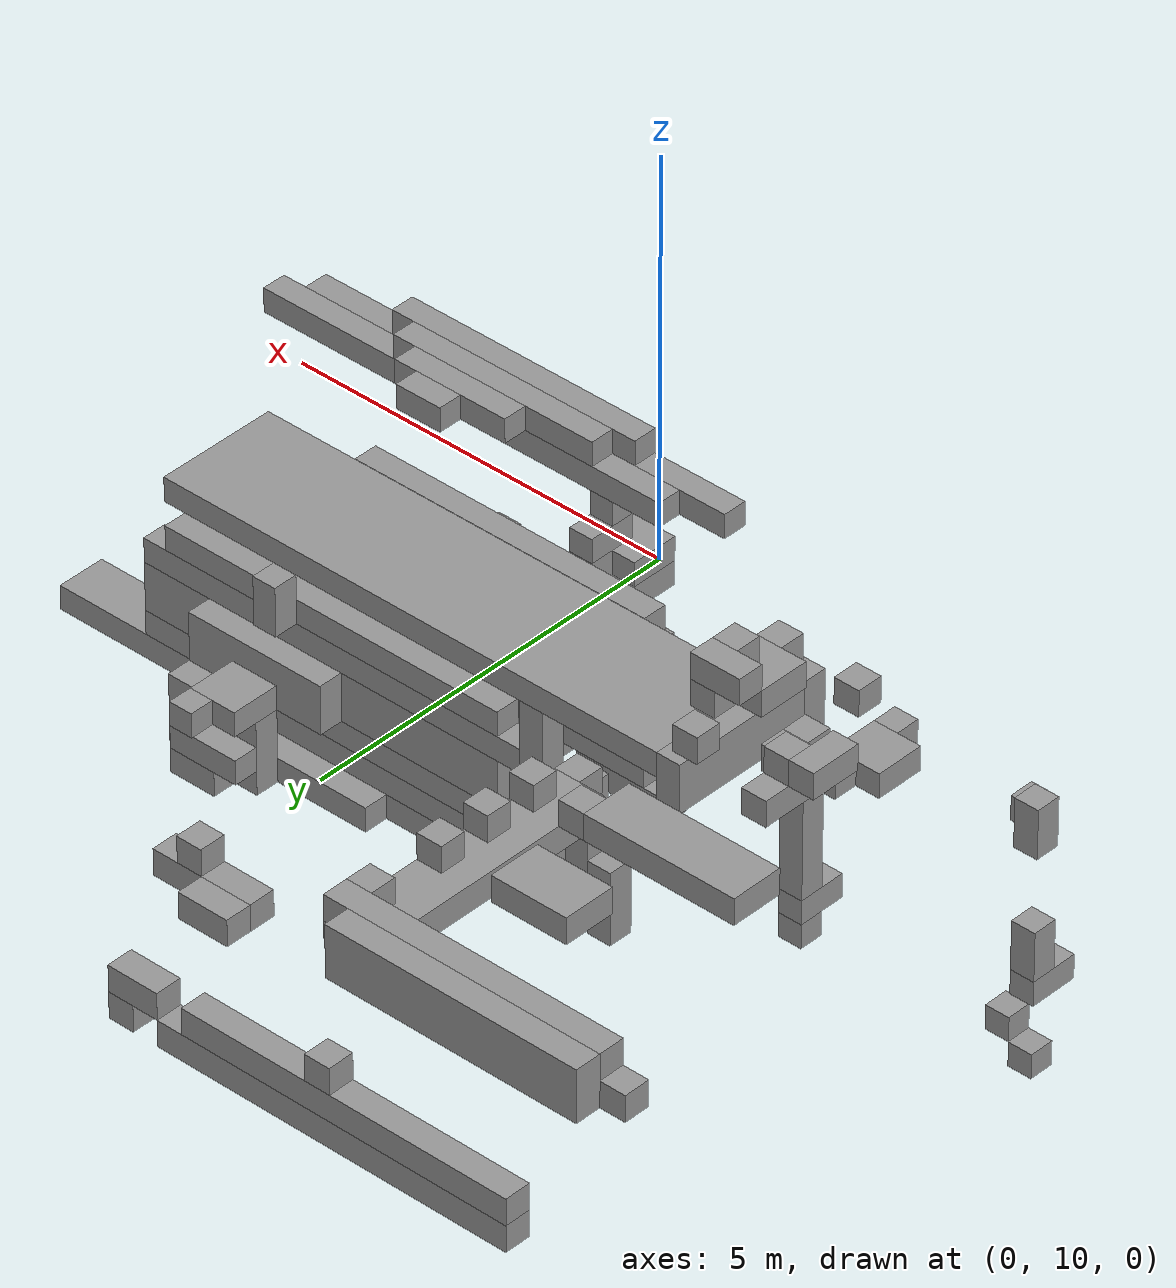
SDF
<sdf version="1.6">
 <world name="bt_world">
  <include><uri>model://sun</uri></include>
  <model name="obstacle_1605">
   <static>true</static>
   <pose>-10.5 23.849999999999998 7.949999999999999 0 0 0</pose>
   <link name="link">
    <collision name="collision">
     <geometry><box><size>3.5999999999999996 0.3 0.3</size></box></geometry>
    </collision>
    <visual name="visual">
     <geometry><box><size>3.5999999999999996 0.3 0.3</size></box></geometry>
     <material><ambient>0.5 0.5 0.5 1</ambient><diffuse>0.6 0.6 0.6 1</diffuse></material>
    </visual>
   </link>
  </model>
  <model name="obstacle_1623">
   <static>true</static>
   <pose>-10.35 23.849999999999998 8.25 0 0 0</pose>
   <link name="link">
    <collision name="collision"><geometry><box><size>3.3 0.3 0.3</size></box></geometry></collision>
    <visual name="visual">
     <geometry><box><size>3.3 0.3 0.3</size></box></geometry>
     <material><ambient>0.5 0.5 0.5 1</ambient><diffuse>0.6 0.6 0.6 1</diffuse></material>
    </visual>
   </link>
  </model>
  <model name="obstacle_1624">
   <static>true</static>
   <pose>-10.5 24.15 8.1 0 0 0</pose>
   <link name="link">
    <collision name="collision"><geometry><box><size>3.0 0.3 0.6</size></box></geometry></collision>
    <visual name="visual">
     <geometry><box><size>3.0 0.3 0.6</size></box></geometry>
     <material><ambient>0.5 0.5 0.5 1</ambient><diffuse>0.6 0.6 0.6 1</diffuse></material>
    </visual>
   </link>
  </model>
  <model name="obstacle_1625">
   <static>true</static>
   <pose>-9.9 25.05 7.05 0 0 0</pose>
   <link name="link">
    <collision name="collision"><geometry><box><size>4.2 0.3 0.3</size></box></geometry></collision>
    <visual name="visual">
     <geometry><box><size>4.2 0.3 0.3</size></box></geometry>
     <material><ambient>0.5 0.5 0.5 1</ambient><diffuse>0.6 0.6 0.6 1</diffuse></material>
    </visual>
   </link>
  </model>
  <model name="obstacle_1626">
   <static>true</static>
   <pose>-10.049999999999999 25.05 7.35 0 0 0</pose>
   <link name="link">
    <collision name="collision"><geometry><box><size>3.9 0.3 0.3</size></box></geometry></collision>
    <visual name="visual">
     <geometry><box><size>3.9 0.3 0.3</size></box></geometry>
     <material><ambient>0.5 0.5 0.5 1</ambient><diffuse>0.6 0.6 0.6 1</diffuse></material>
    </visual>
   </link>
  </model>
  <model name="obstacle_1655">
   <static>true</static>
   <pose>-10.5 21.3 8.25 0 0 0</pose>
   <link name="link">
    <collision name="collision">
     <geometry><box><size>1.7999999999999998 0.6 0.3</size></box></geometry>
    </collision>
    <visual name="visual">
     <geometry><box><size>1.7999999999999998 0.6 0.3</size></box></geometry>
     <material><ambient>0.5 0.5 0.5 1</ambient><diffuse>0.6 0.6 0.6 1</diffuse></material>
    </visual>
   </link>
  </model>
  <model name="obstacle_1680">
   <static>true</static>
   <pose>-10.049999999999999 22.5 8.25 0 0 0</pose>
   <link name="link">
    <collision name="collision">
     <geometry><box><size>0.8999999999999999 0.6 0.3</size></box></geometry>
    </collision>
    <visual name="visual">
     <geometry><box><size>0.8999999999999999 0.6 0.3</size></box></geometry>
     <material><ambient>0.5 0.5 0.5 1</ambient><diffuse>0.6 0.6 0.6 1</diffuse></material>
    </visual>
   </link>
  </model>
  <model name="obstacle_1684">
   <static>true</static>
   <pose>-10.049999999999999 18.45 8.25 0 0 0</pose>
   <link name="link">
    <collision name="collision"><geometry><box><size>0.3 0.3 0.3</size></box></geometry></collision>
    <visual name="visual">
     <geometry><box><size>0.3 0.3 0.3</size></box></geometry>
     <material><ambient>0.5 0.5 0.5 1</ambient><diffuse>0.6 0.6 0.6 1</diffuse></material>
    </visual>
   </link>
  </model>
  <model name="obstacle_1685">
   <static>true</static>
   <pose>-10.049999999999999 18.9 7.6499999999999995 0 0 0</pose>
   <link name="link">
    <collision name="collision"><geometry><box><size>0.3 0.6 0.3</size></box></geometry></collision>
    <visual name="visual">
     <geometry><box><size>0.3 0.6 0.3</size></box></geometry>
     <material><ambient>0.5 0.5 0.5 1</ambient><diffuse>0.6 0.6 0.6 1</diffuse></material>
    </visual>
   </link>
  </model>
  <model name="obstacle_1697">
   <static>true</static>
   <pose>-9.6 18.75 7.35 0 0 0</pose>
   <link name="link">
    <collision name="collision"><geometry><box><size>0.6 0.3 0.3</size></box></geometry></collision>
    <visual name="visual">
     <geometry><box><size>0.6 0.3 0.3</size></box></geometry>
     <material><ambient>0.5 0.5 0.5 1</ambient><diffuse>0.6 0.6 0.6 1</diffuse></material>
    </visual>
   </link>
  </model>
  <model name="obstacle_1698">
   <static>true</static>
   <pose>-9.75 19.2 7.35 0 0 0</pose>
   <link name="link">
    <collision name="collision"><geometry><box><size>0.3 0.6 0.3</size></box></geometry></collision>
    <visual name="visual">
     <geometry><box><size>0.3 0.6 0.3</size></box></geometry>
     <material><ambient>0.5 0.5 0.5 1</ambient><diffuse>0.6 0.6 0.6 1</diffuse></material>
    </visual>
   </link>
  </model>
  <model name="obstacle_1699">
   <static>true</static>
   <pose>-9.75 19.05 7.6499999999999995 0 0 0</pose>
   <link name="link">
    <collision name="collision"><geometry><box><size>0.3 0.3 0.3</size></box></geometry></collision>
    <visual name="visual">
     <geometry><box><size>0.3 0.3 0.3</size></box></geometry>
     <material><ambient>0.5 0.5 0.5 1</ambient><diffuse>0.6 0.6 0.6 1</diffuse></material>
    </visual>
   </link>
  </model>
  <model name="obstacle_1700">
   <static>true</static>
   <pose>-9.75 25.05 7.6499999999999995 0 0 0</pose>
   <link name="link">
    <collision name="collision"><geometry><box><size>0.3 0.3 0.3</size></box></geometry></collision>
    <visual name="visual">
     <geometry><box><size>0.3 0.3 0.3</size></box></geometry>
     <material><ambient>0.5 0.5 0.5 1</ambient><diffuse>0.6 0.6 0.6 1</diffuse></material>
    </visual>
   </link>
  </model>
  <model name="obstacle_1710">
   <static>true</static>
   <pose>-9.45 18.45 7.35 0 0 0</pose>
   <link name="link">
    <collision name="collision"><geometry><box><size>0.3 0.3 0.3</size></box></geometry></collision>
    <visual name="visual">
     <geometry><box><size>0.3 0.3 0.3</size></box></geometry>
     <material><ambient>0.5 0.5 0.5 1</ambient><diffuse>0.6 0.6 0.6 1</diffuse></material>
    </visual>
   </link>
  </model>
  <model name="obstacle_1711">
   <static>true</static>
   <pose>-9.45 19.95 8.25 0 0 0</pose>
   <link name="link">
    <collision name="collision"><geometry><box><size>0.3 0.3 0.3</size></box></geometry></collision>
    <visual name="visual">
     <geometry><box><size>0.3 0.3 0.3</size></box></geometry>
     <material><ambient>0.5 0.5 0.5 1</ambient><diffuse>0.6 0.6 0.6 1</diffuse></material>
    </visual>
   </link>
  </model>
  <model name="obstacle_1712">
   <static>true</static>
   <pose>-9.45 21.45 8.25 0 0 0</pose>
   <link name="link">
    <collision name="collision"><geometry><box><size>0.3 0.3 0.3</size></box></geometry></collision>
    <visual name="visual">
     <geometry><box><size>0.3 0.3 0.3</size></box></geometry>
     <material><ambient>0.5 0.5 0.5 1</ambient><diffuse>0.6 0.6 0.6 1</diffuse></material>
    </visual>
   </link>
  </model>
  <model name="obstacle_1716">
   <static>true</static>
   <pose>-9.0 18.599999999999998 7.949999999999999 0 0 0</pose>
   <link name="link">
    <collision name="collision"><geometry><box><size>0.6 0.6 0.3</size></box></geometry></collision>
    <visual name="visual">
     <geometry><box><size>0.6 0.6 0.3</size></box></geometry>
     <material><ambient>0.5 0.5 0.5 1</ambient><diffuse>0.6 0.6 0.6 1</diffuse></material>
    </visual>
   </link>
  </model>
  <model name="obstacle_1717">
   <static>true</static>
   <pose>-9.0 19.05 8.25 0 0 0</pose>
   <link name="link">
    <collision name="collision"><geometry><box><size>0.6 0.3 0.3</size></box></geometry></collision>
    <visual name="visual">
     <geometry><box><size>0.6 0.3 0.3</size></box></geometry>
     <material><ambient>0.5 0.5 0.5 1</ambient><diffuse>0.6 0.6 0.6 1</diffuse></material>
    </visual>
   </link>
  </model>
  <model name="obstacle_1718">
   <static>true</static>
   <pose>-9.0 22.349999999999998 7.949999999999999 0 0 0</pose>
   <link name="link">
    <collision name="collision">
     <geometry><box><size>0.6 2.6999999999999997 0.3</size></box></geometry>
    </collision>
    <visual name="visual">
     <geometry><box><size>0.6 2.6999999999999997 0.3</size></box></geometry>
     <material><ambient>0.5 0.5 0.5 1</ambient><diffuse>0.6 0.6 0.6 1</diffuse></material>
    </visual>
   </link>
  </model>
  <model name="obstacle_1721">
   <static>true</static>
   <pose>-8.85 18.3 7.6499999999999995 0 0 0</pose>
   <link name="link">
    <collision name="collision"><geometry><box><size>0.3 0.6 0.3</size></box></geometry></collision>
    <visual name="visual">
     <geometry><box><size>0.3 0.6 0.3</size></box></geometry>
     <material><ambient>0.5 0.5 0.5 1</ambient><diffuse>0.6 0.6 0.6 1</diffuse></material>
    </visual>
   </link>
  </model>
  <model name="obstacle_1722">
   <static>true</static>
   <pose>-8.85 18.15 7.949999999999999 0 0 0</pose>
   <link name="link">
    <collision name="collision"><geometry><box><size>0.3 0.3 0.3</size></box></geometry></collision>
    <visual name="visual">
     <geometry><box><size>0.3 0.3 0.3</size></box></geometry>
     <material><ambient>0.5 0.5 0.5 1</ambient><diffuse>0.6 0.6 0.6 1</diffuse></material>
    </visual>
   </link>
  </model>
  <model name="obstacle_1723">
   <static>true</static>
   <pose>-8.85 18.75 8.25 0 0 0</pose>
   <link name="link">
    <collision name="collision"><geometry><box><size>0.3 0.3 0.3</size></box></geometry></collision>
    <visual name="visual">
     <geometry><box><size>0.3 0.3 0.3</size></box></geometry>
     <material><ambient>0.5 0.5 0.5 1</ambient><diffuse>0.6 0.6 0.6 1</diffuse></material>
    </visual>
   </link>
  </model>
  <model name="obstacle_1724">
   <static>true</static>
   <pose>-8.85 19.05 7.949999999999999 0 0 0</pose>
   <link name="link">
    <collision name="collision"><geometry><box><size>0.3 0.3 0.3</size></box></geometry></collision>
    <visual name="visual">
     <geometry><box><size>0.3 0.3 0.3</size></box></geometry>
     <material><ambient>0.5 0.5 0.5 1</ambient><diffuse>0.6 0.6 0.6 1</diffuse></material>
    </visual>
   </link>
  </model>
  <model name="obstacle_1725">
   <static>true</static>
   <pose>-8.85 20.849999999999998 7.949999999999999 0 0 0</pose>
   <link name="link">
    <collision name="collision"><geometry><box><size>0.3 0.3 0.3</size></box></geometry></collision>
    <visual name="visual">
     <geometry><box><size>0.3 0.3 0.3</size></box></geometry>
     <material><ambient>0.5 0.5 0.5 1</ambient><diffuse>0.6 0.6 0.6 1</diffuse></material>
    </visual>
   </link>
  </model>
  <model name="obstacle_1726">
   <static>true</static>
   <pose>-8.85 22.349999999999998 7.6499999999999995 0 0 0</pose>
   <link name="link">
    <collision name="collision">
     <geometry><box><size>0.3 2.6999999999999997 0.3</size></box></geometry>
    </collision>
    <visual name="visual">
     <geometry><box><size>0.3 2.6999999999999997 0.3</size></box></geometry>
     <material><ambient>0.5 0.5 0.5 1</ambient><diffuse>0.6 0.6 0.6 1</diffuse></material>
    </visual>
   </link>
  </model>
  <model name="obstacle_1727">
   <static>true</static>
   <pose>-8.85 21.45 8.25 0 0 0</pose>
   <link name="link">
    <collision name="collision"><geometry><box><size>0.3 0.3 0.3</size></box></geometry></collision>
    <visual name="visual">
     <geometry><box><size>0.3 0.3 0.3</size></box></geometry>
     <material><ambient>0.5 0.5 0.5 1</ambient><diffuse>0.6 0.6 0.6 1</diffuse></material>
    </visual>
   </link>
  </model>
  <model name="obstacle_1728">
   <static>true</static>
   <pose>-8.85 22.05 8.25 0 0 0</pose>
   <link name="link">
    <collision name="collision"><geometry><box><size>0.3 0.3 0.3</size></box></geometry></collision>
    <visual name="visual">
     <geometry><box><size>0.3 0.3 0.3</size></box></geometry>
     <material><ambient>0.5 0.5 0.5 1</ambient><diffuse>0.6 0.6 0.6 1</diffuse></material>
    </visual>
   </link>
  </model>
  <model name="obstacle_1729">
   <static>true</static>
   <pose>-8.85 22.65 8.25 0 0 0</pose>
   <link name="link">
    <collision name="collision"><geometry><box><size>0.3 0.3 0.3</size></box></geometry></collision>
    <visual name="visual">
     <geometry><box><size>0.3 0.3 0.3</size></box></geometry>
     <material><ambient>0.5 0.5 0.5 1</ambient><diffuse>0.6 0.6 0.6 1</diffuse></material>
    </visual>
   </link>
  </model>
  <model name="obstacle_1730">
   <static>true</static>
   <pose>-8.85 23.55 8.25 0 0 0</pose>
   <link name="link">
    <collision name="collision"><geometry><box><size>0.3 0.3 0.3</size></box></geometry></collision>
    <visual name="visual">
     <geometry><box><size>0.3 0.3 0.3</size></box></geometry>
     <material><ambient>0.5 0.5 0.5 1</ambient><diffuse>0.6 0.6 0.6 1</diffuse></material>
    </visual>
   </link>
  </model>
  <model name="obstacle_1750">
   <static>true</static>
   <pose>-7.6499999999999995 12.9 0.44999999999999996 0 0 0</pose>
   <link name="link">
    <collision name="collision"><geometry><box><size>0.3 0.6 0.3</size></box></geometry></collision>
    <visual name="visual">
     <geometry><box><size>0.3 0.6 0.3</size></box></geometry>
     <material><ambient>0.5 0.5 0.5 1</ambient><diffuse>0.6 0.6 0.6 1</diffuse></material>
    </visual>
   </link>
  </model>
  <model name="obstacle_1751">
   <static>true</static>
   <pose>-7.6499999999999995 13.049999999999999 -0.44999999999999996 0 0 0</pose>
   <link name="link">
    <collision name="collision"><geometry><box><size>0.3 0.3 0.3</size></box></geometry></collision>
    <visual name="visual">
     <geometry><box><size>0.3 0.3 0.3</size></box></geometry>
     <material><ambient>0.5 0.5 0.5 1</ambient><diffuse>0.6 0.6 0.6 1</diffuse></material>
    </visual>
   </link>
  </model>
  <model name="obstacle_1752">
   <static>true</static>
   <pose>-7.6499999999999995 13.049999999999999 0.8999999999999999 0 0 0</pose>
   <link name="link">
    <collision name="collision"><geometry><box><size>0.3 0.3 0.6</size></box></geometry></collision>
    <visual name="visual">
     <geometry><box><size>0.3 0.3 0.6</size></box></geometry>
     <material><ambient>0.5 0.5 0.5 1</ambient><diffuse>0.6 0.6 0.6 1</diffuse></material>
    </visual>
   </link>
  </model>
  <model name="obstacle_1753">
   <static>true</static>
   <pose>-7.6499999999999995 13.049999999999999 2.4 0 0 0</pose>
   <link name="link">
    <collision name="collision"><geometry><box><size>0.3 0.3 0.6</size></box></geometry></collision>
    <visual name="visual">
     <geometry><box><size>0.3 0.3 0.6</size></box></geometry>
     <material><ambient>0.5 0.5 0.5 1</ambient><diffuse>0.6 0.6 0.6 1</diffuse></material>
    </visual>
   </link>
  </model>
  <model name="obstacle_1754">
   <static>true</static>
   <pose>-7.199999999999999 23.849999999999998 7.6499999999999995 0 0 0</pose>
   <link name="link">
    <collision name="collision"><geometry><box><size>1.2 0.3 0.3</size></box></geometry></collision>
    <visual name="visual">
     <geometry><box><size>1.2 0.3 0.3</size></box></geometry>
     <material><ambient>0.5 0.5 0.5 1</ambient><diffuse>0.6 0.6 0.6 1</diffuse></material>
    </visual>
   </link>
  </model>
  <model name="obstacle_1755">
   <static>true</static>
   <pose>-7.5 24.15 7.6499999999999995 0 0 0</pose>
   <link name="link">
    <collision name="collision"><geometry><box><size>0.6 0.3 0.3</size></box></geometry></collision>
    <visual name="visual">
     <geometry><box><size>0.6 0.3 0.3</size></box></geometry>
     <material><ambient>0.5 0.5 0.5 1</ambient><diffuse>0.6 0.6 0.6 1</diffuse></material>
    </visual>
   </link>
  </model>
  <model name="obstacle_1756">
   <static>true</static>
   <pose>-7.5 25.05 7.35 0 0 0</pose>
   <link name="link">
    <collision name="collision"><geometry><box><size>0.6 0.3 0.3</size></box></geometry></collision>
    <visual name="visual">
     <geometry><box><size>0.6 0.3 0.3</size></box></geometry>
     <material><ambient>0.5 0.5 0.5 1</ambient><diffuse>0.6 0.6 0.6 1</diffuse></material>
    </visual>
   </link>
  </model>
  <model name="obstacle_1759">
   <static>true</static>
   <pose>-7.35 12.75 2.25 0 0 0</pose>
   <link name="link">
    <collision name="collision"><geometry><box><size>0.3 0.3 0.3</size></box></geometry></collision>
    <visual name="visual">
     <geometry><box><size>0.3 0.3 0.3</size></box></geometry>
     <material><ambient>0.5 0.5 0.5 1</ambient><diffuse>0.6 0.6 0.6 1</diffuse></material>
    </visual>
   </link>
  </model>
  <model name="obstacle_1760">
   <static>true</static>
   <pose>-7.35 13.049999999999999 -0.15 0 0 0</pose>
   <link name="link">
    <collision name="collision"><geometry><box><size>0.3 0.3 0.3</size></box></geometry></collision>
    <visual name="visual">
     <geometry><box><size>0.3 0.3 0.3</size></box></geometry>
     <material><ambient>0.5 0.5 0.5 1</ambient><diffuse>0.6 0.6 0.6 1</diffuse></material>
    </visual>
   </link>
  </model>
  <model name="obstacle_1761">
   <static>true</static>
   <pose>-7.35 25.05 7.05 0 0 0</pose>
   <link name="link">
    <collision name="collision"><geometry><box><size>0.3 0.3 0.3</size></box></geometry></collision>
    <visual name="visual">
     <geometry><box><size>0.3 0.3 0.3</size></box></geometry>
     <material><ambient>0.5 0.5 0.5 1</ambient><diffuse>0.6 0.6 0.6 1</diffuse></material>
    </visual>
   </link>
  </model>
  <model name="obstacle_1765">
   <static>true</static>
   <pose>-7.05 23.849999999999998 7.949999999999999 0 0 0</pose>
   <link name="link">
    <collision name="collision"><geometry><box><size>0.3 0.3 0.3</size></box></geometry></collision>
    <visual name="visual">
     <geometry><box><size>0.3 0.3 0.3</size></box></geometry>
     <material><ambient>0.5 0.5 0.5 1</ambient><diffuse>0.6 0.6 0.6 1</diffuse></material>
    </visual>
   </link>
  </model>
  <model name="obstacle_1774">
   <static>true</static>
   <pose>-6.0 13.5 2.55 0 0 0</pose>
   <link name="link">
    <collision name="collision"><geometry><box><size>0.6 0.6 0.3</size></box></geometry></collision>
    <visual name="visual">
     <geometry><box><size>0.6 0.6 0.3</size></box></geometry>
     <material><ambient>0.5 0.5 0.5 1</ambient><diffuse>0.6 0.6 0.6 1</diffuse></material>
    </visual>
   </link>
  </model>
  <model name="obstacle_1777">
   <static>true</static>
   <pose>-5.85 13.049999999999999 2.55 0 0 0</pose>
   <link name="link">
    <collision name="collision"><geometry><box><size>0.3 0.3 0.3</size></box></geometry></collision>
    <visual name="visual">
     <geometry><box><size>0.3 0.3 0.3</size></box></geometry>
     <material><ambient>0.5 0.5 0.5 1</ambient><diffuse>0.6 0.6 0.6 1</diffuse></material>
    </visual>
   </link>
  </model>
  <model name="obstacle_1778">
   <static>true</static>
   <pose>-5.85 13.95 2.55 0 0 0</pose>
   <link name="link">
    <collision name="collision"><geometry><box><size>0.3 0.3 0.3</size></box></geometry></collision>
    <visual name="visual">
     <geometry><box><size>0.3 0.3 0.3</size></box></geometry>
     <material><ambient>0.5 0.5 0.5 1</ambient><diffuse>0.6 0.6 0.6 1</diffuse></material>
    </visual>
   </link>
  </model>
  <model name="obstacle_1794">
   <static>true</static>
   <pose>-4.6499999999999995 12.9 -0.15 0 0 0</pose>
   <link name="link">
    <collision name="collision"><geometry><box><size>0.3 0.6 0.3</size></box></geometry></collision>
    <visual name="visual">
     <geometry><box><size>0.3 0.6 0.3</size></box></geometry>
     <material><ambient>0.5 0.5 0.5 1</ambient><diffuse>0.6 0.6 0.6 1</diffuse></material>
    </visual>
   </link>
  </model>
  <model name="obstacle_1795">
   <static>true</static>
   <pose>-4.6499999999999995 13.049999999999999 -0.44999999999999996 0 0 0</pose>
   <link name="link">
    <collision name="collision"><geometry><box><size>0.3 0.3 0.3</size></box></geometry></collision>
    <visual name="visual">
     <geometry><box><size>0.3 0.3 0.3</size></box></geometry>
     <material><ambient>0.5 0.5 0.5 1</ambient><diffuse>0.6 0.6 0.6 1</diffuse></material>
    </visual>
   </link>
  </model>
  <model name="obstacle_1796">
   <static>true</static>
   <pose>-4.6499999999999995 13.049999999999999 1.3499999999999999 0 0 0</pose>
   <link name="link">
    <collision name="collision">
     <geometry><box><size>0.3 0.3 2.6999999999999997</size></box></geometry>
    </collision>
    <visual name="visual">
     <geometry><box><size>0.3 0.3 2.6999999999999997</size></box></geometry>
     <material><ambient>0.5 0.5 0.5 1</ambient><diffuse>0.6 0.6 0.6 1</diffuse></material>
    </visual>
   </link>
  </model>
  <model name="obstacle_1797">
   <static>true</static>
   <pose>-4.6499999999999995 14.1 2.4 0 0 0</pose>
   <link name="link">
    <collision name="collision">
     <geometry><box><size>0.3 1.7999999999999998 0.6</size></box></geometry>
    </collision>
    <visual name="visual">
     <geometry><box><size>0.3 1.7999999999999998 0.6</size></box></geometry>
     <material><ambient>0.5 0.5 0.5 1</ambient><diffuse>0.6 0.6 0.6 1</diffuse></material>
    </visual>
   </link>
  </model>
  <model name="obstacle_1806">
   <static>true</static>
   <pose>-1.2 14.25 2.55 0 0 0</pose>
   <link name="link">
    <collision name="collision"><geometry><box><size>6.6 1.5 0.3</size></box></geometry></collision>
    <visual name="visual">
     <geometry><box><size>6.6 1.5 0.3</size></box></geometry>
     <material><ambient>0.5 0.5 0.5 1</ambient><diffuse>0.6 0.6 0.6 1</diffuse></material>
    </visual>
   </link>
  </model>
  <model name="obstacle_1833">
   <static>true</static>
   <pose>-3.75 14.85 0.44999999999999996 0 0 0</pose>
   <link name="link">
    <collision name="collision">
     <geometry><box><size>0.3 0.3 0.8999999999999999</size></box></geometry>
    </collision>
    <visual name="visual">
     <geometry><box><size>0.3 0.3 0.8999999999999999</size></box></geometry>
     <material><ambient>0.5 0.5 0.5 1</ambient><diffuse>0.6 0.6 0.6 1</diffuse></material>
    </visual>
   </link>
  </model>
  <model name="obstacle_1846">
   <static>true</static>
   <pose>-3.4499999999999997 14.85 1.2 0 0 0</pose>
   <link name="link">
    <collision name="collision"><geometry><box><size>0.3 0.3 1.2</size></box></geometry></collision>
    <visual name="visual">
     <geometry><box><size>0.3 0.3 1.2</size></box></geometry>
     <material><ambient>0.5 0.5 0.5 1</ambient><diffuse>0.6 0.6 0.6 1</diffuse></material>
    </visual>
   </link>
  </model>
  <model name="obstacle_1861">
   <static>true</static>
   <pose>-2.4 13.049999999999999 0.15 0 0 0</pose>
   <link name="link">
    <collision name="collision"><geometry><box><size>1.2 0.3 0.3</size></box></geometry></collision>
    <visual name="visual">
     <geometry><box><size>1.2 0.3 0.3</size></box></geometry>
     <material><ambient>0.5 0.5 0.5 1</ambient><diffuse>0.6 0.6 0.6 1</diffuse></material>
    </visual>
   </link>
  </model>
  <model name="obstacle_1862">
   <static>true</static>
   <pose>-0.44999999999999996 13.049999999999999 1.05 0 0 0</pose>
   <link name="link">
    <collision name="collision"><geometry><box><size>5.1 0.3 0.3</size></box></geometry></collision>
    <visual name="visual">
     <geometry><box><size>5.1 0.3 0.3</size></box></geometry>
     <material><ambient>0.5 0.5 0.5 1</ambient><diffuse>0.6 0.6 0.6 1</diffuse></material>
    </visual>
   </link>
  </model>
  <model name="obstacle_1863">
   <static>true</static>
   <pose>-2.85 13.049999999999999 1.3499999999999999 0 0 0</pose>
   <link name="link">
    <collision name="collision"><geometry><box><size>0.3 0.3 0.3</size></box></geometry></collision>
    <visual name="visual">
     <geometry><box><size>0.3 0.3 0.3</size></box></geometry>
     <material><ambient>0.5 0.5 0.5 1</ambient><diffuse>0.6 0.6 0.6 1</diffuse></material>
    </visual>
   </link>
  </model>
  <model name="obstacle_1864">
   <static>true</static>
   <pose>0.3 14.7 0.44999999999999996 0 0 0</pose>
   <link name="link">
    <collision name="collision"><geometry><box><size>6.6 0.6 0.3</size></box></geometry></collision>
    <visual name="visual">
     <geometry><box><size>6.6 0.6 0.3</size></box></geometry>
     <material><ambient>0.5 0.5 0.5 1</ambient><diffuse>0.6 0.6 0.6 1</diffuse></material>
    </visual>
   </link>
  </model>
  <model name="obstacle_1865">
   <static>true</static>
   <pose>-2.85 14.85 0.15 0 0 0</pose>
   <link name="link">
    <collision name="collision"><geometry><box><size>0.3 0.3 0.3</size></box></geometry></collision>
    <visual name="visual">
     <geometry><box><size>0.3 0.3 0.3</size></box></geometry>
     <material><ambient>0.5 0.5 0.5 1</ambient><diffuse>0.6 0.6 0.6 1</diffuse></material>
    </visual>
   </link>
  </model>
  <model name="obstacle_1866">
   <static>true</static>
   <pose>-0.3 14.85 0.75 0 0 0</pose>
   <link name="link">
    <collision name="collision">
     <geometry><box><size>5.3999999999999995 0.3 0.3</size></box></geometry>
    </collision>
    <visual name="visual">
     <geometry><box><size>5.3999999999999995 0.3 0.3</size></box></geometry>
     <material><ambient>0.5 0.5 0.5 1</ambient><diffuse>0.6 0.6 0.6 1</diffuse></material>
    </visual>
   </link>
  </model>
  <model name="obstacle_1867">
   <static>true</static>
   <pose>-2.85 14.85 1.65 0 0 0</pose>
   <link name="link">
    <collision name="collision"><geometry><box><size>0.3 0.3 1.5</size></box></geometry></collision>
    <visual name="visual">
     <geometry><box><size>0.3 0.3 1.5</size></box></geometry>
     <material><ambient>0.5 0.5 0.5 1</ambient><diffuse>0.6 0.6 0.6 1</diffuse></material>
    </visual>
   </link>
  </model>
  <model name="obstacle_1871">
   <static>true</static>
   <pose>0.6 12.75 0.15 0 0 0</pose>
   <link name="link">
    <collision name="collision"><geometry><box><size>6.6 0.3 0.3</size></box></geometry></collision>
    <visual name="visual">
     <geometry><box><size>6.6 0.3 0.3</size></box></geometry>
     <material><ambient>0.5 0.5 0.5 1</ambient><diffuse>0.6 0.6 0.6 1</diffuse></material>
    </visual>
   </link>
  </model>
  <model name="obstacle_1872">
   <static>true</static>
   <pose>-0.15 13.049999999999999 0.6 0 0 0</pose>
   <link name="link">
    <collision name="collision"><geometry><box><size>5.1 0.3 0.6</size></box></geometry></collision>
    <visual name="visual">
     <geometry><box><size>5.1 0.3 0.6</size></box></geometry>
     <material><ambient>0.5 0.5 0.5 1</ambient><diffuse>0.6 0.6 0.6 1</diffuse></material>
    </visual>
   </link>
  </model>
  <model name="obstacle_1873">
   <static>true</static>
   <pose>-0.75 13.049999999999999 1.95 0 0 0</pose>
   <link name="link">
    <collision name="collision">
     <geometry><box><size>3.9 0.3 0.8999999999999999</size></box></geometry>
    </collision>
    <visual name="visual">
     <geometry><box><size>3.9 0.3 0.8999999999999999</size></box></geometry>
     <material><ambient>0.5 0.5 0.5 1</ambient><diffuse>0.6 0.6 0.6 1</diffuse></material>
    </visual>
   </link>
  </model>
  <model name="obstacle_1874">
   <static>true</static>
   <pose>-0.15 14.85 1.65 0 0 0</pose>
   <link name="link">
    <collision name="collision"><geometry><box><size>5.1 0.3 0.3</size></box></geometry></collision>
    <visual name="visual">
     <geometry><box><size>5.1 0.3 0.3</size></box></geometry>
     <material><ambient>0.5 0.5 0.5 1</ambient><diffuse>0.6 0.6 0.6 1</diffuse></material>
    </visual>
   </link>
  </model>
  <model name="obstacle_1886">
   <static>true</static>
   <pose>0.44999999999999996 11.549999999999999 2.55 0 0 0</pose>
   <link name="link">
    <collision name="collision"><geometry><box><size>5.7 0.3 0.3</size></box></geometry></collision>
    <visual name="visual">
     <geometry><box><size>5.7 0.3 0.3</size></box></geometry>
     <material><ambient>0.5 0.5 0.5 1</ambient><diffuse>0.6 0.6 0.6 1</diffuse></material>
    </visual>
   </link>
  </model>
  <model name="obstacle_1888">
   <static>true</static>
   <pose>-0.6 13.049999999999999 1.3499999999999999 0 0 0</pose>
   <link name="link">
    <collision name="collision">
     <geometry><box><size>3.5999999999999996 0.3 0.3</size></box></geometry>
    </collision>
    <visual name="visual">
     <geometry><box><size>3.5999999999999996 0.3 0.3</size></box></geometry>
     <material><ambient>0.5 0.5 0.5 1</ambient><diffuse>0.6 0.6 0.6 1</diffuse></material>
    </visual>
   </link>
  </model>
  <model name="obstacle_1889">
   <static>true</static>
   <pose>-2.1 14.7 0.15 0 0 0</pose>
   <link name="link">
    <collision name="collision"><geometry><box><size>0.6 0.6 0.3</size></box></geometry></collision>
    <visual name="visual">
     <geometry><box><size>0.6 0.6 0.3</size></box></geometry>
     <material><ambient>0.5 0.5 0.5 1</ambient><diffuse>0.6 0.6 0.6 1</diffuse></material>
    </visual>
   </link>
  </model>
  <model name="obstacle_1890">
   <static>true</static>
   <pose>0.0 14.85 1.2 0 0 0</pose>
   <link name="link">
    <collision name="collision"><geometry><box><size>4.8 0.3 0.6</size></box></geometry></collision>
    <visual name="visual">
     <geometry><box><size>4.8 0.3 0.6</size></box></geometry>
     <material><ambient>0.5 0.5 0.5 1</ambient><diffuse>0.6 0.6 0.6 1</diffuse></material>
    </visual>
   </link>
  </model>
  <model name="obstacle_1891">
   <static>true</static>
   <pose>-0.15 14.85 1.95 0 0 0</pose>
   <link name="link">
    <collision name="collision"><geometry><box><size>4.5 0.3 0.3</size></box></geometry></collision>
    <visual name="visual">
     <geometry><box><size>4.5 0.3 0.3</size></box></geometry>
     <material><ambient>0.5 0.5 0.5 1</ambient><diffuse>0.6 0.6 0.6 1</diffuse></material>
    </visual>
   </link>
  </model>
  <model name="obstacle_1913">
   <static>true</static>
   <pose>0.8999999999999999 11.85 2.55 0 0 0</pose>
   <link name="link">
    <collision name="collision">
     <geometry><box><size>5.3999999999999995 0.3 0.3</size></box></geometry>
    </collision>
    <visual name="visual">
     <geometry><box><size>5.3999999999999995 0.3 0.3</size></box></geometry>
     <material><ambient>0.5 0.5 0.5 1</ambient><diffuse>0.6 0.6 0.6 1</diffuse></material>
    </visual>
   </link>
  </model>
  <model name="obstacle_1918">
   <static>true</static>
   <pose>-0.3 14.85 0.15 0 0 0</pose>
   <link name="link">
    <collision name="collision"><geometry><box><size>3.0 0.3 0.3</size></box></geometry></collision>
    <visual name="visual">
     <geometry><box><size>3.0 0.3 0.3</size></box></geometry>
     <material><ambient>0.5 0.5 0.5 1</ambient><diffuse>0.6 0.6 0.6 1</diffuse></material>
    </visual>
   </link>
  </model>
  <model name="obstacle_1959">
   <static>true</static>
   <pose>-1.05 13.2 0.15 0 0 0</pose>
   <link name="link">
    <collision name="collision">
     <geometry><box><size>0.8999999999999999 0.6 0.3</size></box></geometry>
    </collision>
    <visual name="visual">
     <geometry><box><size>0.8999999999999999 0.6 0.3</size></box></geometry>
     <material><ambient>0.5 0.5 0.5 1</ambient><diffuse>0.6 0.6 0.6 1</diffuse></material>
    </visual>
   </link>
  </model>
  <model name="obstacle_1960">
   <static>true</static>
   <pose>-1.05 14.549999999999999 0.15 0 0 0</pose>
   <link name="link">
    <collision name="collision">
     <geometry><box><size>0.8999999999999999 0.3 0.3</size></box></geometry>
    </collision>
    <visual name="visual">
     <geometry><box><size>0.8999999999999999 0.3 0.3</size></box></geometry>
     <material><ambient>0.5 0.5 0.5 1</ambient><diffuse>0.6 0.6 0.6 1</diffuse></material>
    </visual>
   </link>
  </model>
  <model name="obstacle_2031">
   <static>true</static>
   <pose>-1.05 11.549999999999999 0.15 0 0 0</pose>
   <link name="link">
    <collision name="collision">
     <geometry><box><size>0.3 0.8999999999999999 0.3</size></box></geometry>
    </collision>
    <visual name="visual">
     <geometry><box><size>0.3 0.8999999999999999 0.3</size></box></geometry>
     <material><ambient>0.5 0.5 0.5 1</ambient><diffuse>0.6 0.6 0.6 1</diffuse></material>
    </visual>
   </link>
  </model>
  <model name="obstacle_2032">
   <static>true</static>
   <pose>-0.8999999999999999 11.549999999999999 1.05 0 0 0</pose>
   <link name="link">
    <collision name="collision">
     <geometry><box><size>0.6 0.8999999999999999 0.3</size></box></geometry>
    </collision>
    <visual name="visual">
     <geometry><box><size>0.6 0.8999999999999999 0.3</size></box></geometry>
     <material><ambient>0.5 0.5 0.5 1</ambient><diffuse>0.6 0.6 0.6 1</diffuse></material>
    </visual>
   </link>
  </model>
  <model name="obstacle_2033">
   <static>true</static>
   <pose>-0.8999999999999999 11.4 1.3499999999999999 0 0 0</pose>
   <link name="link">
    <collision name="collision"><geometry><box><size>0.6 0.6 0.3</size></box></geometry></collision>
    <visual name="visual">
     <geometry><box><size>0.6 0.6 0.3</size></box></geometry>
     <material><ambient>0.5 0.5 0.5 1</ambient><diffuse>0.6 0.6 0.6 1</diffuse></material>
    </visual>
   </link>
  </model>
  <model name="obstacle_2037">
   <static>true</static>
   <pose>0.44999999999999996 11.549999999999999 2.85 0 0 0</pose>
   <link name="link">
    <collision name="collision"><geometry><box><size>3.3 0.3 0.3</size></box></geometry></collision>
    <visual name="visual">
     <geometry><box><size>3.3 0.3 0.3</size></box></geometry>
     <material><ambient>0.5 0.5 0.5 1</ambient><diffuse>0.6 0.6 0.6 1</diffuse></material>
    </visual>
   </link>
  </model>
  <model name="obstacle_2038">
   <static>true</static>
   <pose>-0.8999999999999999 11.85 0.44999999999999996 0 0 0</pose>
   <link name="link">
    <collision name="collision"><geometry><box><size>0.6 0.3 0.3</size></box></geometry></collision>
    <visual name="visual">
     <geometry><box><size>0.6 0.3 0.3</size></box></geometry>
     <material><ambient>0.5 0.5 0.5 1</ambient><diffuse>0.6 0.6 0.6 1</diffuse></material>
    </visual>
   </link>
  </model>
  <model name="obstacle_2040">
   <static>true</static>
   <pose>-0.6 13.65 0.15 0 0 0</pose>
   <link name="link">
    <collision name="collision"><geometry><box><size>1.2 0.3 0.3</size></box></geometry></collision>
    <visual name="visual">
     <geometry><box><size>1.2 0.3 0.3</size></box></geometry>
     <material><ambient>0.5 0.5 0.5 1</ambient><diffuse>0.6 0.6 0.6 1</diffuse></material>
    </visual>
   </link>
  </model>
  <model name="obstacle_2088">
   <static>true</static>
   <pose>-0.75 11.4 1.95 0 0 0</pose>
   <link name="link">
    <collision name="collision"><geometry><box><size>0.3 0.6 0.3</size></box></geometry></collision>
    <visual name="visual">
     <geometry><box><size>0.3 0.6 0.3</size></box></geometry>
     <material><ambient>0.5 0.5 0.5 1</ambient><diffuse>0.6 0.6 0.6 1</diffuse></material>
    </visual>
   </link>
  </model>
  <model name="obstacle_2089">
   <static>true</static>
   <pose>-0.44999999999999996 11.549999999999999 0.0 0 0 0</pose>
   <link name="link">
    <collision name="collision">
     <geometry><box><size>0.8999999999999999 0.3 0.6</size></box></geometry>
    </collision>
    <visual name="visual">
     <geometry><box><size>0.8999999999999999 0.3 0.6</size></box></geometry>
     <material><ambient>0.5 0.5 0.5 1</ambient><diffuse>0.6 0.6 0.6 1</diffuse></material>
    </visual>
   </link>
  </model>
  <model name="obstacle_2090">
   <static>true</static>
   <pose>-0.75 11.7 1.65 0 0 0</pose>
   <link name="link">
    <collision name="collision"><geometry><box><size>0.3 0.6 0.3</size></box></geometry></collision>
    <visual name="visual">
     <geometry><box><size>0.3 0.6 0.3</size></box></geometry>
     <material><ambient>0.5 0.5 0.5 1</ambient><diffuse>0.6 0.6 0.6 1</diffuse></material>
    </visual>
   </link>
  </model>
  <model name="obstacle_2091">
   <static>true</static>
   <pose>-0.75 11.549999999999999 2.25 0 0 0</pose>
   <link name="link">
    <collision name="collision"><geometry><box><size>0.3 0.3 0.3</size></box></geometry></collision>
    <visual name="visual">
     <geometry><box><size>0.3 0.3 0.3</size></box></geometry>
     <material><ambient>0.5 0.5 0.5 1</ambient><diffuse>0.6 0.6 0.6 1</diffuse></material>
    </visual>
   </link>
  </model>
  <model name="obstacle_2093">
   <static>true</static>
   <pose>-0.75 11.85 1.3499999999999999 0 0 0</pose>
   <link name="link">
    <collision name="collision"><geometry><box><size>0.3 0.3 0.3</size></box></geometry></collision>
    <visual name="visual">
     <geometry><box><size>0.3 0.3 0.3</size></box></geometry>
     <material><ambient>0.5 0.5 0.5 1</ambient><diffuse>0.6 0.6 0.6 1</diffuse></material>
    </visual>
   </link>
  </model>
  <model name="obstacle_2094">
   <static>true</static>
   <pose>0.44999999999999996 11.85 2.85 0 0 0</pose>
   <link name="link">
    <collision name="collision">
     <geometry><box><size>2.6999999999999997 0.3 0.3</size></box></geometry>
    </collision>
    <visual name="visual">
     <geometry><box><size>2.6999999999999997 0.3 0.3</size></box></geometry>
     <material><ambient>0.5 0.5 0.5 1</ambient><diffuse>0.6 0.6 0.6 1</diffuse></material>
    </visual>
   </link>
  </model>
  <model name="obstacle_2096">
   <static>true</static>
   <pose>-0.6 14.25 2.25 0 0 0</pose>
   <link name="link">
    <collision name="collision"><geometry><box><size>0.6 0.3 0.3</size></box></geometry></collision>
    <visual name="visual">
     <geometry><box><size>0.6 0.3 0.3</size></box></geometry>
     <material><ambient>0.5 0.5 0.5 1</ambient><diffuse>0.6 0.6 0.6 1</diffuse></material>
    </visual>
   </link>
  </model>
  <model name="obstacle_2097">
   <static>true</static>
   <pose>0.3 15.149999999999999 0.15 0 0 0</pose>
   <link name="link">
    <collision name="collision"><geometry><box><size>2.4 0.3 0.3</size></box></geometry></collision>
    <visual name="visual">
     <geometry><box><size>2.4 0.3 0.3</size></box></geometry>
     <material><ambient>0.5 0.5 0.5 1</ambient><diffuse>0.6 0.6 0.6 1</diffuse></material>
    </visual>
   </link>
  </model>
  <model name="obstacle_2115">
   <static>true</static>
   <pose>-0.3 13.35 0.15 0 0 0</pose>
   <link name="link">
    <collision name="collision"><geometry><box><size>0.6 0.3 0.3</size></box></geometry></collision>
    <visual name="visual">
     <geometry><box><size>0.6 0.3 0.3</size></box></geometry>
     <material><ambient>0.5 0.5 0.5 1</ambient><diffuse>0.6 0.6 0.6 1</diffuse></material>
    </visual>
   </link>
  </model>
  <model name="obstacle_2116">
   <static>true</static>
   <pose>-0.44999999999999996 13.95 0.15 0 0 0</pose>
   <link name="link">
    <collision name="collision"><geometry><box><size>0.3 0.3 0.3</size></box></geometry></collision>
    <visual name="visual">
     <geometry><box><size>0.3 0.3 0.3</size></box></geometry>
     <material><ambient>0.5 0.5 0.5 1</ambient><diffuse>0.6 0.6 0.6 1</diffuse></material>
    </visual>
   </link>
  </model>
  <model name="obstacle_2117">
   <static>true</static>
   <pose>-0.3 14.549999999999999 2.25 0 0 0</pose>
   <link name="link">
    <collision name="collision"><geometry><box><size>0.6 0.3 0.3</size></box></geometry></collision>
    <visual name="visual">
     <geometry><box><size>0.6 0.3 0.3</size></box></geometry>
     <material><ambient>0.5 0.5 0.5 1</ambient><diffuse>0.6 0.6 0.6 1</diffuse></material>
    </visual>
   </link>
  </model>
  <model name="obstacle_2142">
   <static>true</static>
   <pose>0.75 12.45 0.15 0 0 0</pose>
   <link name="link">
    <collision name="collision"><geometry><box><size>2.1 0.3 0.3</size></box></geometry></collision>
    <visual name="visual">
     <geometry><box><size>2.1 0.3 0.3</size></box></geometry>
     <material><ambient>0.5 0.5 0.5 1</ambient><diffuse>0.6 0.6 0.6 1</diffuse></material>
    </visual>
   </link>
  </model>
  <model name="obstacle_2143">
   <static>true</static>
   <pose>0.0 13.049999999999999 0.15 0 0 0</pose>
   <link name="link">
    <collision name="collision"><geometry><box><size>0.6 0.3 0.3</size></box></geometry></collision>
    <visual name="visual">
     <geometry><box><size>0.6 0.3 0.3</size></box></geometry>
     <material><ambient>0.5 0.5 0.5 1</ambient><diffuse>0.6 0.6 0.6 1</diffuse></material>
    </visual>
   </link>
  </model>
  <model name="obstacle_2144">
   <static>true</static>
   <pose>0.0 13.65 2.25 0 0 0</pose>
   <link name="link">
    <collision name="collision"><geometry><box><size>0.6 0.3 0.3</size></box></geometry></collision>
    <visual name="visual">
     <geometry><box><size>0.6 0.3 0.3</size></box></geometry>
     <material><ambient>0.5 0.5 0.5 1</ambient><diffuse>0.6 0.6 0.6 1</diffuse></material>
    </visual>
   </link>
  </model>
  <model name="obstacle_2145">
   <static>true</static>
   <pose>-0.15 13.95 2.25 0 0 0</pose>
   <link name="link">
    <collision name="collision"><geometry><box><size>0.3 0.3 0.3</size></box></geometry></collision>
    <visual name="visual">
     <geometry><box><size>0.3 0.3 0.3</size></box></geometry>
     <material><ambient>0.5 0.5 0.5 1</ambient><diffuse>0.6 0.6 0.6 1</diffuse></material>
    </visual>
   </link>
  </model>
  <model name="obstacle_2146">
   <static>true</static>
   <pose>0.0 14.549999999999999 0.15 0 0 0</pose>
   <link name="link">
    <collision name="collision"><geometry><box><size>0.6 0.3 0.3</size></box></geometry></collision>
    <visual name="visual">
     <geometry><box><size>0.6 0.3 0.3</size></box></geometry>
     <material><ambient>0.5 0.5 0.5 1</ambient><diffuse>0.6 0.6 0.6 1</diffuse></material>
    </visual>
   </link>
  </model>
  <model name="obstacle_2147">
   <static>true</static>
   <pose>0.6 15.149999999999999 1.2 0 0 0</pose>
   <link name="link">
    <collision name="collision">
     <geometry><box><size>1.7999999999999998 0.3 0.6</size></box></geometry>
    </collision>
    <visual name="visual">
     <geometry><box><size>1.7999999999999998 0.3 0.6</size></box></geometry>
     <material><ambient>0.5 0.5 0.5 1</ambient><diffuse>0.6 0.6 0.6 1</diffuse></material>
    </visual>
   </link>
  </model>
  <model name="obstacle_2159">
   <static>true</static>
   <pose>0.75 12.15 2.85 0 0 0</pose>
   <link name="link">
    <collision name="collision"><geometry><box><size>1.5 0.3 0.3</size></box></geometry></collision>
    <visual name="visual">
     <geometry><box><size>1.5 0.3 0.3</size></box></geometry>
     <material><ambient>0.5 0.5 0.5 1</ambient><diffuse>0.6 0.6 0.6 1</diffuse></material>
    </visual>
   </link>
  </model>
  <model name="obstacle_2160">
   <static>true</static>
   <pose>0.44999999999999996 14.25 2.25 0 0 0</pose>
   <link name="link">
    <collision name="collision">
     <geometry><box><size>0.8999999999999999 0.3 0.3</size></box></geometry>
    </collision>
    <visual name="visual">
     <geometry><box><size>0.8999999999999999 0.3 0.3</size></box></geometry>
     <material><ambient>0.5 0.5 0.5 1</ambient><diffuse>0.6 0.6 0.6 1</diffuse></material>
    </visual>
   </link>
  </model>
  <model name="obstacle_2176">
   <static>true</static>
   <pose>0.44999999999999996 13.65 0.15 0 0 0</pose>
   <link name="link">
    <collision name="collision"><geometry><box><size>0.3 0.3 0.3</size></box></geometry></collision>
    <visual name="visual">
     <geometry><box><size>0.3 0.3 0.3</size></box></geometry>
     <material><ambient>0.5 0.5 0.5 1</ambient><diffuse>0.6 0.6 0.6 1</diffuse></material>
    </visual>
   </link>
  </model>
  <model name="obstacle_2178">
   <static>true</static>
   <pose>0.44999999999999996 15.149999999999999 2.1 0 0 0</pose>
   <link name="link">
    <collision name="collision"><geometry><box><size>0.3 0.3 0.6</size></box></geometry></collision>
    <visual name="visual">
     <geometry><box><size>0.3 0.3 0.6</size></box></geometry>
     <material><ambient>0.5 0.5 0.5 1</ambient><diffuse>0.6 0.6 0.6 1</diffuse></material>
    </visual>
   </link>
  </model>
  <model name="obstacle_2180">
   <static>true</static>
   <pose>0.8999999999999999 15.45 0.44999999999999996 0 0 0</pose>
   <link name="link">
    <collision name="collision">
     <geometry><box><size>1.2 0.3 0.8999999999999999</size></box></geometry>
    </collision>
    <visual name="visual">
     <geometry><box><size>1.2 0.3 0.8999999999999999</size></box></geometry>
     <material><ambient>0.5 0.5 0.5 1</ambient><diffuse>0.6 0.6 0.6 1</diffuse></material>
    </visual>
   </link>
  </model>
  <model name="obstacle_2181">
   <static>true</static>
   <pose>0.6 15.6 1.05 0 0 0</pose>
   <link name="link">
    <collision name="collision"><geometry><box><size>0.6 0.6 0.3</size></box></geometry></collision>
    <visual name="visual">
     <geometry><box><size>0.6 0.6 0.3</size></box></geometry>
     <material><ambient>0.5 0.5 0.5 1</ambient><diffuse>0.6 0.6 0.6 1</diffuse></material>
    </visual>
   </link>
  </model>
  <model name="obstacle_2183">
   <static>true</static>
   <pose>0.75 15.75 0.44999999999999996 0 0 0</pose>
   <link name="link">
    <collision name="collision">
     <geometry><box><size>0.8999999999999999 0.3 0.3</size></box></geometry>
    </collision>
    <visual name="visual">
     <geometry><box><size>0.8999999999999999 0.3 0.3</size></box></geometry>
     <material><ambient>0.5 0.5 0.5 1</ambient><diffuse>0.6 0.6 0.6 1</diffuse></material>
    </visual>
   </link>
  </model>
  <model name="obstacle_2196">
   <static>true</static>
   <pose>0.8999999999999999 12.45 2.85 0 0 0</pose>
   <link name="link">
    <collision name="collision"><geometry><box><size>0.6 0.3 0.3</size></box></geometry></collision>
    <visual name="visual">
     <geometry><box><size>0.6 0.3 0.3</size></box></geometry>
     <material><ambient>0.5 0.5 0.5 1</ambient><diffuse>0.6 0.6 0.6 1</diffuse></material>
    </visual>
   </link>
  </model>
  <model name="obstacle_2201">
   <static>true</static>
   <pose>0.8999999999999999 15.75 0.15 0 0 0</pose>
   <link name="link">
    <collision name="collision"><geometry><box><size>0.6 0.3 0.3</size></box></geometry></collision>
    <visual name="visual">
     <geometry><box><size>0.6 0.3 0.3</size></box></geometry>
     <material><ambient>0.5 0.5 0.5 1</ambient><diffuse>0.6 0.6 0.6 1</diffuse></material>
    </visual>
   </link>
  </model>
  <model name="obstacle_2205">
   <static>true</static>
   <pose>0.75 16.05 1.05 0 0 0</pose>
   <link name="link">
    <collision name="collision"><geometry><box><size>0.3 0.3 0.3</size></box></geometry></collision>
    <visual name="visual">
     <geometry><box><size>0.3 0.3 0.3</size></box></geometry>
     <material><ambient>0.5 0.5 0.5 1</ambient><diffuse>0.6 0.6 0.6 1</diffuse></material>
    </visual>
   </link>
  </model>
  <model name="obstacle_2212">
   <static>true</static>
   <pose>1.05 11.25 0.44999999999999996 0 0 0</pose>
   <link name="link">
    <collision name="collision"><geometry><box><size>0.3 0.3 0.3</size></box></geometry></collision>
    <visual name="visual">
     <geometry><box><size>0.3 0.3 0.3</size></box></geometry>
     <material><ambient>0.5 0.5 0.5 1</ambient><diffuse>0.6 0.6 0.6 1</diffuse></material>
    </visual>
   </link>
  </model>
 </world>
</sdf>
